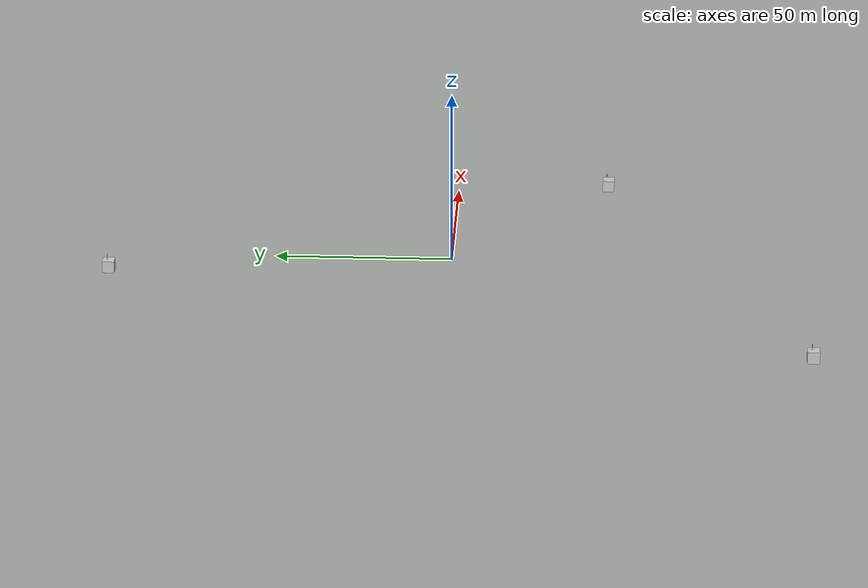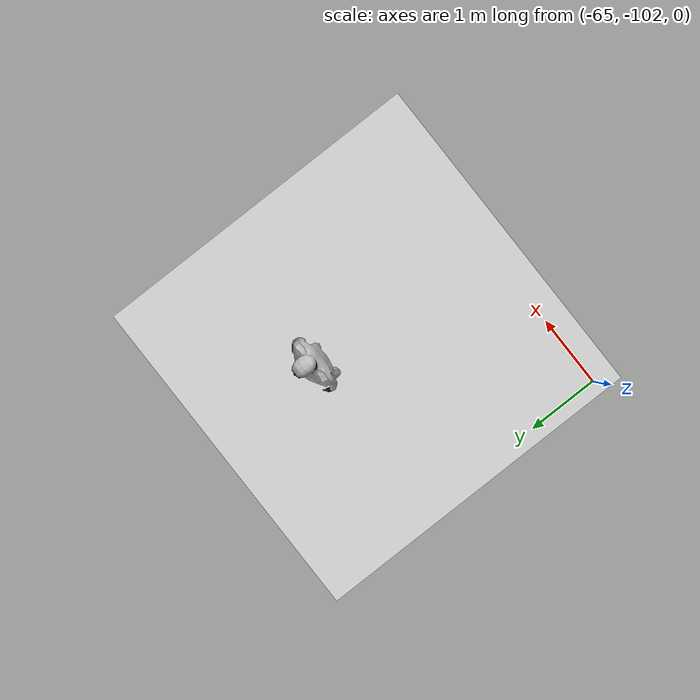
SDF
<sdf version="1.10">
 <world name="iris_runway">
  <physics name="1ms" type="ignore">
   <max_step_size>0.001</max_step_size>
   <real_time_factor>1</real_time_factor>
   <real_time_update_rate>1000</real_time_update_rate>
  </physics>
  <plugin name="gz::sim::systems::Physics" filename="gz-sim-physics-system"/>
  <plugin name="gz::sim::systems::Sensors" filename="gz-sim-sensors-system">
   <render_engine>ogre2</render_engine>
  </plugin>
  <plugin name="gz::sim::systems::UserCommands" filename="gz-sim-user-commands-system"/>
  <plugin name="gz::sim::systems::SceneBroadcaster" filename="gz-sim-scene-broadcaster-system"/>
  <plugin name="gz::sim::systems::Imu" filename="gz-sim-imu-system"/>
  <plugin name="gz::sim::systems::NavSat" filename="gz-sim-navsat-system"/>
  <scene>
   <ambient>1 1 1 1</ambient>
   <background>0.800000012 0.800000012 0.800000012 1</background>
   <shadows>true</shadows>
  </scene>
  <spherical_coordinates>
   <latitude_deg>-35.363261999999999</latitude_deg>
   <longitude_deg>149.16523699999999</longitude_deg>
   <elevation>584</elevation>
   <heading_deg>0</heading_deg>
   <surface_model>EARTH_WGS84</surface_model>
  </spherical_coordinates>
  <gravity>0 0 -9.8000000000000007</gravity>
  <magnetic_field>5.5644999999999998e-06 2.2875799999999999e-05 -4.2388400000000002e-05</magnetic_field>
  <atmosphere type="adiabatic"/>
  <model name="axes">
   <static>true</static>
   <link name="link">
    <visual name="r">
     <cast_shadows>false</cast_shadows>
     <pose>5 0 0.10000000000000001 0 0 0</pose>
     <geometry><box><size>10 0.01 0.01</size></box></geometry>
     <material>
      <ambient>1 0 0 0.800000012</ambient>
      <diffuse>1 0 0 0.800000012</diffuse>
      <emissive>1 0 0 0.800000012</emissive>
      <specular>0.5 0.5 0.5 0.800000012</specular>
     </material>
    </visual>
    <visual name="g">
     <cast_shadows>false</cast_shadows>
     <pose>0 5 0.10000000000000001 0 0 0</pose>
     <geometry><box><size>0.01 10 0.01</size></box></geometry>
     <material>
      <ambient>0 1 0 0.800000012</ambient>
      <diffuse>0 1 0 0.800000012</diffuse>
      <emissive>0 1 0 0.800000012</emissive>
      <specular>0.5 0.5 0.5 0.800000012</specular>
     </material>
    </visual>
    <visual name="b">
     <cast_shadows>false</cast_shadows>
     <pose>0 0 5.0999999999999996 0 0 0</pose>
     <geometry><box><size>0.01 0.01 10</size></box></geometry>
     <material>
      <ambient>0 0 1 0.800000012</ambient>
      <diffuse>0 0 1 0.800000012</diffuse>
      <emissive>0 0 1 0.800000012</emissive>
      <specular>0.5 0.5 0.5 0.800000012</specular>
     </material>
    </visual>
    <sensor name="navsat_sensor" type="navsat"><always_on>true</always_on><update_rate>1</update_rate></sensor>
    <inertial>
     <mass>1</mass>
     <inertia><ixx>1</ixx><ixy>0</ixy><ixz>0</ixz><iyy>1</iyy><iyz>0</iyz><izz>1</izz></inertia>
    </inertial>
   </link>
  </model>
  <model name="untitled">
   <link name="link">
    <visual name="visual">
     <geometry><mesh><uri>file:///home/aryan/ardupilot_gazebo/house_model/untitled.dae</uri></mesh></geometry>
    </visual>
    <collision name="collision">
     <geometry><mesh><uri>file:///home/aryan/ardupilot_gazebo/house_model/untitled.dae</uri></mesh></geometry>
    </collision>
    <inertial>
     <mass>1</mass>
     <inertia><ixx>1</ixx><ixy>0</ixy><ixz>0</ixz><iyy>1</iyy><iyz>0</iyz><izz>1</izz></inertia>
    </inertial>
   </link>
   <pose>52.95052316087061 -43.988149345525891 -0.56458509238052068 1.5229719668984699e-19 -1.4753120315850578e-18 3.8588182576550401e-22</pose>
   <static>false</static>
  </model>
  <model name="untitled_0">
   <link name="link">
    <visual name="visual">
     <geometry><mesh><uri>file:///home/aryan/ardupilot_gazebo/house_model/untitled.dae</uri></mesh></geometry>
    </visual>
    <collision name="collision">
     <geometry><mesh><uri>file:///home/aryan/ardupilot_gazebo/house_model/untitled.dae</uri></mesh></geometry>
    </collision>
    <inertial>
     <mass>1</mass>
     <inertia><ixx>1</ixx><ixy>0</ixy><ixz>0</ixz><iyy>1</iyy><iyz>0</iyz><izz>1</izz></inertia>
    </inertial>
   </link>
   <pose>-11.945574888558504 96.350898562739417 -0.56458509238052068 5.9455015060980363e-19 2.8636864148122825e-19 5.8385245171808614e-21</pose>
   <static>false</static>
  </model>
  <model name="untitled_1">
   <link name="link">
    <visual name="visual">
     <geometry><mesh><uri>file:///home/aryan/ardupilot_gazebo/house_model/untitled.dae</uri></mesh></geometry>
    </visual>
    <collision name="collision">
     <geometry><mesh><uri>file:///home/aryan/ardupilot_gazebo/house_model/untitled.dae</uri></mesh></geometry>
    </collision>
    <inertial>
     <mass>1</mass>
     <inertia><ixx>1</ixx><ixy>0</ixy><ixz>0</ixz><iyy>1</iyy><iyz>0</iyz><izz>1</izz></inertia>
    </inertial>
   </link>
   <pose>-62.891688159106394 -100.04129516721257 -0.56458509238052068 1.9808249848097391e-18 -4.1385615167977763e-19 -5.1494674903271265e-21</pose>
   <static>false</static>
  </model>
  <light name="sun" type="directional">
   <pose>0 0 10 0 0 0</pose>
   <intensity>1</intensity>
   <direction>-0.5 0.10000000000000001 -0.90000000000000002</direction>
   <diffuse>0.800000012 0.800000012 0.800000012 1</diffuse>
   <specular>0.800000012 0.800000012 0.800000012 1</specular>
   <attenuation>
    <range>1000</range>
    <linear>0.01</linear>
    <constant>0.90000000000000002</constant>
    <quadratic>0.001</quadratic>
   </attenuation>
   <spot><inner_angle>0</inner_angle><outer_angle>0</outer_angle><falloff>0</falloff></spot>
  </light>
 </world>
</sdf>
